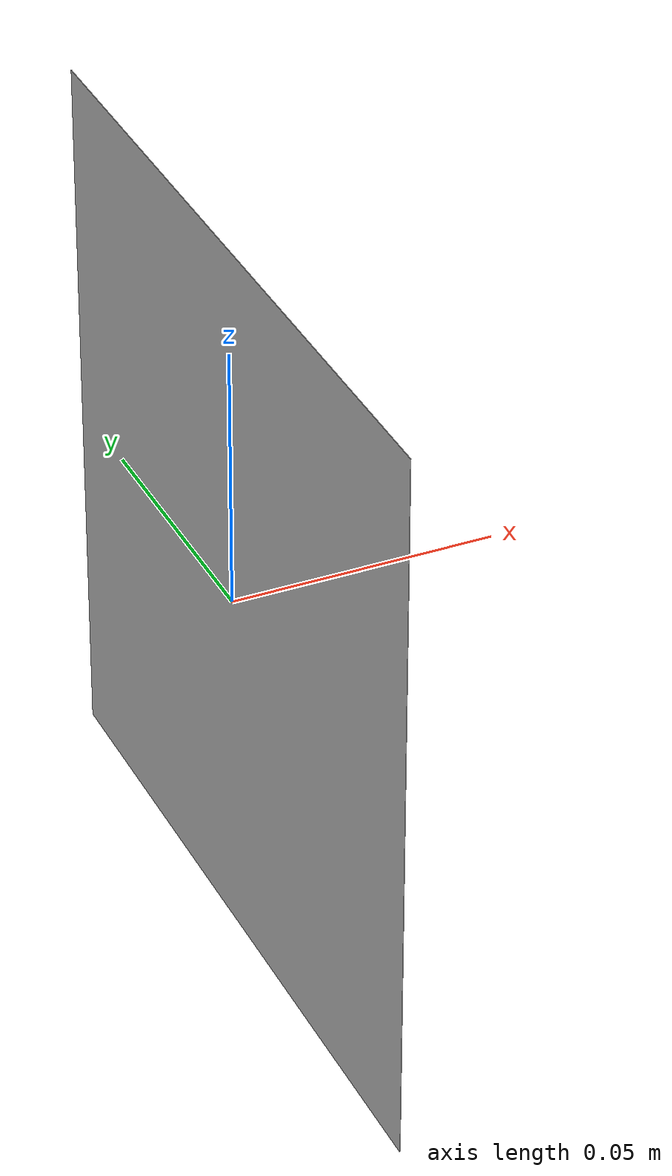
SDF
<?xml version="1.0"?>
<sdf version="1.6">
  <model name="aruco_marker_107">
    <static>true</static>
      <link name="link">
        <inertial>
          <pose>0 0 0 0 0 0</pose>
          <mass>0.001</mass>
          <inertia>
            <ixx>3.7499999999999997e-06</ixx>
            <ixy>0.0</ixy>
            <ixz>0.0</ixz>
            <iyy>1.8750008333333333e-06</iyy>
            <iyz>0.0</iyz>
            <izz>1.8750008333333333e-06</izz>
          </inertia>
        </inertial>
        <visual name="front_visual">
          <pose>0.00005 0 0 0 0 0</pose>
          <geometry>
            <box>
              <size>0.0001 0.14 0.14</size>
            </box>
          </geometry>
          <material>
            <script>
              <uri>model://aruco_marker_107/materials/scripts</uri>
              <uri>model://aruco_marker_107/materials/textures</uri>
              <name>Marker107</name>
            </script>
          </material>
        </visual>
        <!-- Hide the marker from the back -->
        <collision name="collision">
          <pose>0 0 0 0 0 0</pose>
          <geometry>
            <box>
              <size>0.0001 0.14 0.14</size>
            </box>
          </geometry>
        </collision>
      </link>
  </model>
</sdf>
